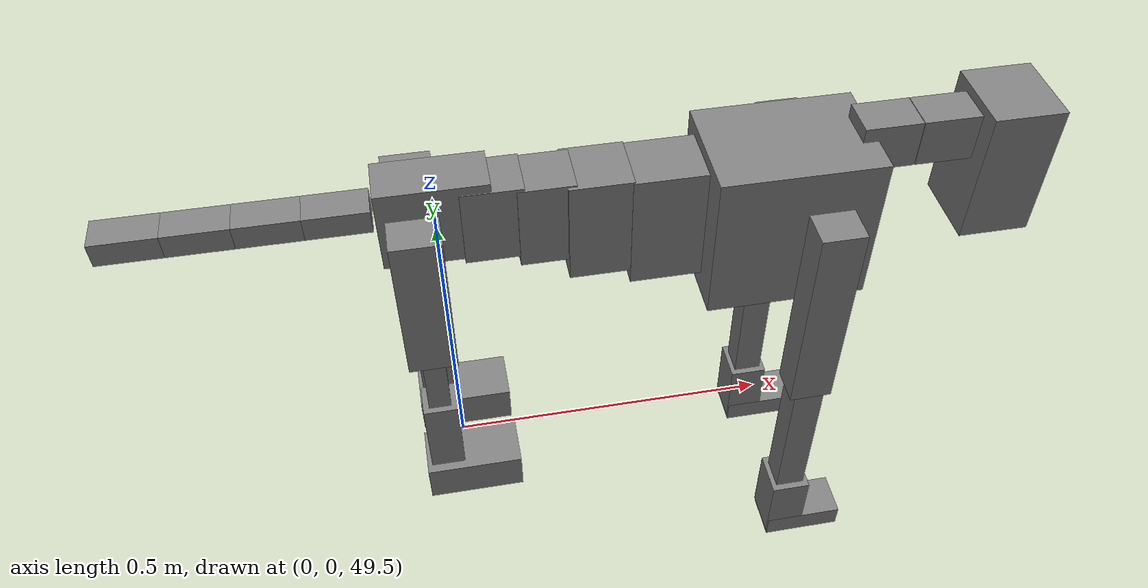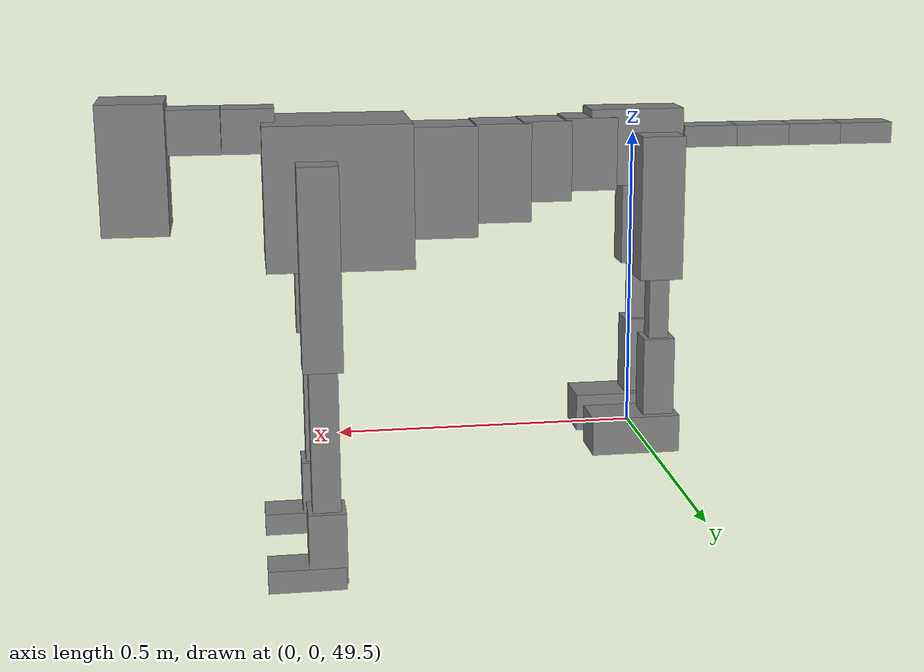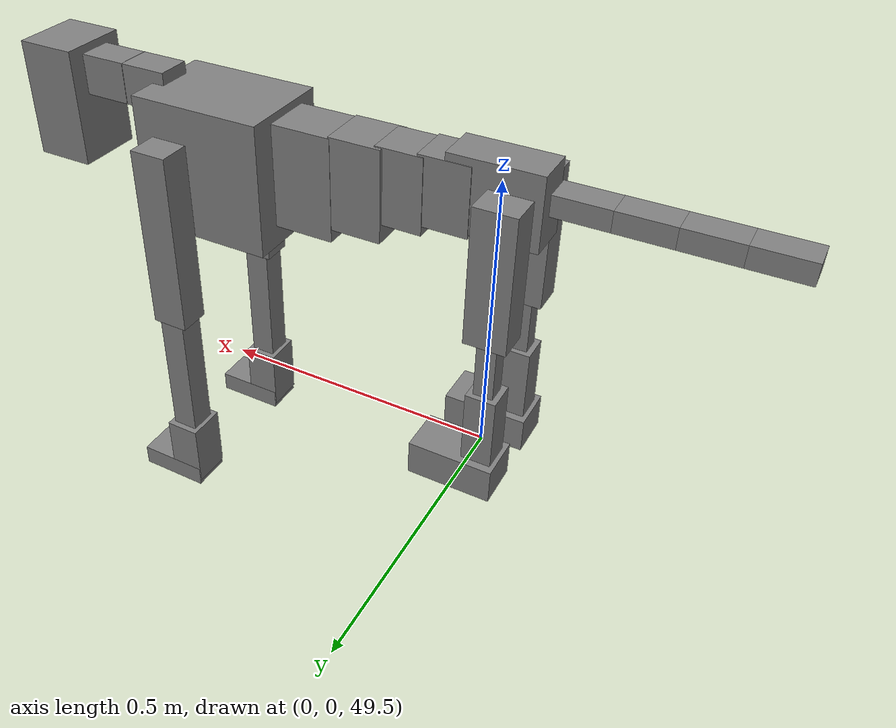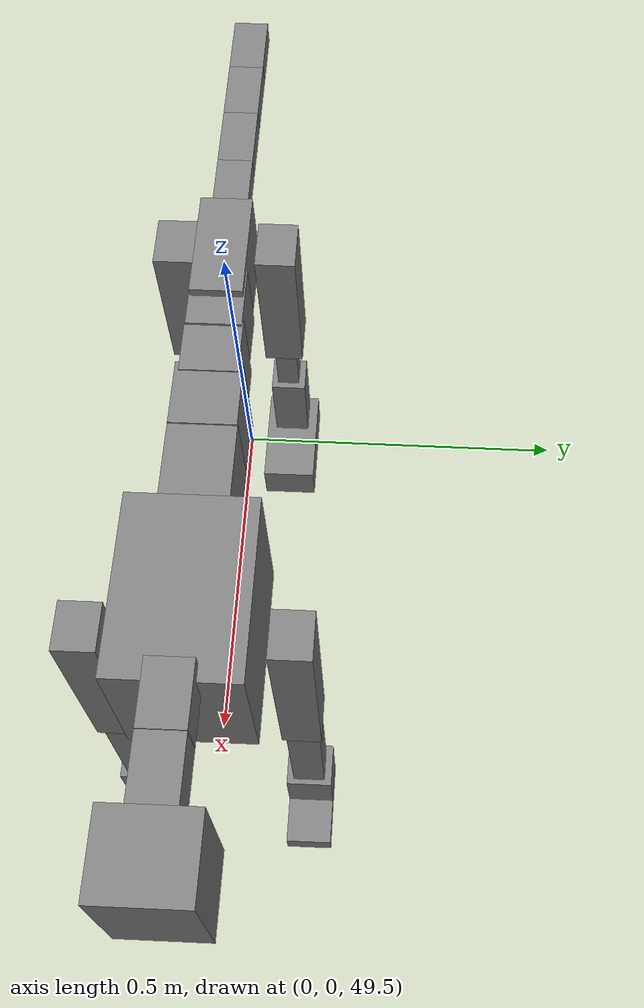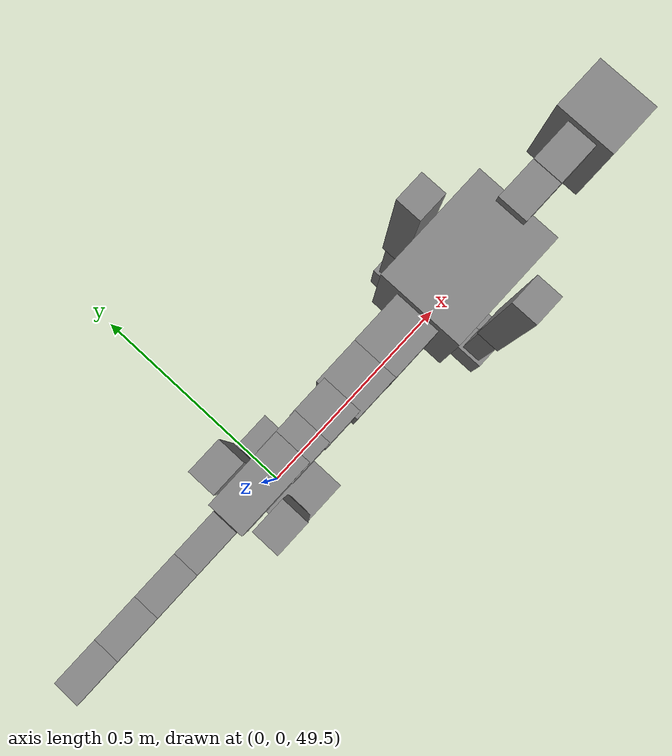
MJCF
<mujoco model="dog">

    <default>
        <joint armature="0.02" stiffness="1" damping="0.2" limited="true"/>
        <geom condim="3" friction="1 0.05 0.05" margin="0.01"/>
        <motor ctrllimited="true" ctrlrange="-1.0 1.0" forcelimited="true" gear="50"/>
    </default>

    <compiler inertiafromgeom="true" angle="radian"/>

    <option timestep="0.016" iterations="50" tolerance="1e-10" solver="Newton" jacobian="dense" cone="pyramidal"/>

    <size nconmax="20000" njmax="60000" nstack="5000000"/>
    <visual>
        <map force="0.1" zfar="30"/>
        <rgba haze="0.15 0.25 0.35 1"/>
        <quality shadowsize="2048"/>
        <global offwidth="800" offheight="800"/>
    </visual>

    <asset>
        <texture type="skybox" builtin="gradient" rgb1="0.3 0.5 0.7" rgb2="0 0 0" width="512" height="512"/>
        <texture name="texplane" type="2d" builtin="checker" rgb1=".2 .3 .4" rgb2=".1 0.15 0.2" width="512" height="512"
                 mark="cross" markrgb=".8 .8 .8"/>
        <texture name="texgeom" type="cube" builtin="flat" mark="cross" width="127" height="1278" rgb1="0.8 0.6 0.4"
                 rgb2="0.8 0.6 0.4" markrgb="1 1 1" random="0.01"/>

        <material name="matplane" reflectance="0.3" texture="texplane" texrepeat="1 1" texuniform="true"/>
        <material name="matgeom" texture="texgeom" texuniform="true" rgba="0.8 0.6 .4 1"/>
    </asset>

    <worldbody>
        <geom name="floor" pos="0 0 0" size="0 0 .25" type="plane" material="matplane" condim="3"/>

        <light directional="false" diffuse=".2 .2 .2" specular="0 0 0" pos="0 0 5" dir="0 0 -1" castshadow="false"/>
        <light mode="targetbodycom" target="torso" directional="false" diffuse=".8 .8 .8" specular="0.3 0.3 0.3"
               pos="0 0 4.0" dir="0 0 -1"/>

        <body name="root" pos="0 0 50">
            <freejoint name="root_1"/>
            <geom type="box" pos="0 0 -0.02" size="0.0774  0.0358  0.063" density="2030"/>

            <body name="spine1" pos="0.054 0 0">
                <joint name="spine1_y" axis="0 1 0" range="0 0.7" limited="true"/>
                <geom type="box" pos="0.02375 0 -0.03" size="0.04375  0.0375  0.05985" density="2030"/>

                <body name="spine2" pos="0.0612 0 0">
                    <joint name="spine2_y" axis="0 1 0" range="-0.15 0.15" limited="true"/>
                    <geom type="box" pos="0.03555  0  -0.04" size="0.04055  0.039  0.06615" density="2030"/>

                    <body name="spine3" pos="0.0730 0 0">
                        <joint name="spine3_y" axis="0 1 0" range="-0.15 0.15" limited="true"/>
                        <geom type="box" pos="0.03555  0  -0.057" size="0.04555  0.0445  0.081" density="2030"/>

                        <body name="spine4" pos="0.0780 0 0">
                            <joint name="spine4_y" axis="0 1 0" range="-0.15 0.15" limited="true"/>
                            <geom type="box" pos="0.05265  0  -0.07" size="0.05265  0.045  0.09135" density="2030"/>

                            <body name="torso" pos="0.1082 0 0">
                                <joint name="torso_y" axis="0 1 0" range="-0.15 0.15" limited="true"/>
                                <geom type="box" pos="0.11925  0  -0.085" size="0.11925  0.085  0.11745"
                                      density="2030"/>

                                <body name="neck1" pos="0.2160  0   0.0180">
                                    <joint name="neck1_y" axis="0 1 0" range="-1.2  -1" limited="true"/>
                                    <geom type="box" pos="0.0423  0  0" size="0.0423  0.03  0.036" density="2325"/>

                                    <body name="neck2" pos="0.0853  0  0">
                                        <joint name="neck2_y" axis="0 1 0" range="0.1  0" limited="true"/>
                                        <geom type="box" pos="0.0423  0  0" size="0.0423  0.03  0.036" density="2325"/>

                                        <body name="head" pos="0.0853  0  0">
                                            <joint name="head_y" axis="0 1 0" range="-0.3  -0.2" limited="true"/>
                                            <geom type="box" pos="0.0531  0  -0.055" size="0.0531  0.06  0.1044"
                                                  density="4030"/>

                                        </body>
                                    </body>
                                </body>

                                <body name="front_shoulder" pos="0.156  0   -0.0480">
                                    <joint name="front_shoulder_y" axis="0 1 0" range="-1 1.5" limited="true"/>
                                    <geom type="box" pos="0 0.13 -0.1376" size="0.0324  0.0277  0.1642" density="1158"/>
                                    <geom type="box" pos="0 -0.13 -0.1376" size="0.0324  0.0277  0.1642"
                                          density="1158"/>

                                    <body name="front_elbow" pos="0  0  -0.2752">
                                        <joint name="front_elbow_y" axis="0 1 0" range="-2 0" limited="true"/>
                                        <geom type="box" pos="0 0.13 -0.1372" size="0.0232  0.0238  0.1372"
                                              density="1081"/>
                                        <geom type="box" pos="0 -0.13 -0.1372" size="0.0232  0.0238  0.1372"
                                              density="1081"/>

                                        <body name="front_wrist" pos="0  0  -0.2743">
                                            <joint name="front_wrist_y" axis="0 1 0" range="-0.2 0" limited="true"/>
                                            <geom type="box" pos="0 0.13 -0.0471" size="0.0311  0.0346  0.0602"
                                                  density="1664"/>
                                            <geom type="box" pos="0 -0.13 -0.0471" size="0.0311  0.0346  0.0602"
                                                  density="1664"/>

                                            <body name="front_finger_end" pos="0  0  -0.0942">
                                                <joint name="front_finger_y" axis="0 1 0" range="-0.4 1"
                                                       limited="true"/>
                                                <geom type="box" pos="0.0347  0.13  -0.0041"
                                                      size="0.0635  0.0347  0.0191" density="1515"/>
                                                <geom type="box" pos="0.0347  -0.13  -0.0041"
                                                      size="0.0635  0.0347  0.0191" density="1515"/>

                                            </body>

                                        </body>
                                    </body>
                                </body>

                            </body>
                        </body>
                    </body>
                </body>
            </body>

            <body name="back_hip" pos="-0.03 0 -0.018">
                <joint name="back_hip_y" axis="0 1 0" range="-1.5 0.3" limited="true"/>
                <geom type="box" pos="0 0.07 -0.0954" size="0.0355  0.0279  0.1182" density="1154"/>
                <geom type="box" pos="0 -0.07 -0.0954" size="0.0355  0.0279  0.1182" density="1154"/>

                <body name="back_knee" pos="0  0  -0.1908">
                    <joint name="back_knee_y" axis="0 1 0" range="0 2.8" limited="true"/>
                    <geom type="box" pos="0 0.07 -0.0674" size="0.0166  0.0163  0.0830" density="1227"/>
                    <geom type="box" pos="0 -0.07 -0.0674" size="0.0166  0.0163  0.0830" density="1227"/>

                    <body name="back_ankle" pos="0  0  -0.1349">
                        <joint name="back_ankle_y" axis="0 1 0" range="-2.2 0" limited="true"/>
                        <geom type="box" pos="0 0.07 -0.0669" size="0.0260  0.0260  0.0781" density="1284"/>
                        <geom type="box" pos="0 -0.07 -0.0669" size="0.0260  0.0260  0.0781" density="1284"/>

                        <body name="back_toe_end" pos="0  0  -0.1337">
                            <joint name="back_toe_y" axis="0 1 0" range="-0.4 1" limited="true"/>
                            <geom type="box" pos="0.0402  0.07  -0.0164" size="0.0737  0.0402  0.0314" density="1515"/>
                            <geom type="box" pos="0.0402  -0.07  -0.0164" size="0.0737  0.0402  0.0314" density="1515"/>

                        </body>
                    </body>
                </body>
            </body>

            <body name="tail1" pos="-0.074 0 -0.006">
                <joint name="tail1_y" axis="0 1 0" range="-0.2 0.2" limited="true"/>
                <geom type="box" pos="-0.0536  0  0" size="0.045  0.025  0.0175" density="1587"/>

                <body name="tail2" pos="-0.09 0 0">
                    <joint name="tail2_y" axis="0 1 0" range="-0.2 0.2" limited="true"/>
                    <geom type="box" pos="-0.0536  0  0" size="0.045  0.025  0.0175" density="1587"/>

                    <body name="tail3" pos="-0.09 0 0">
                        <joint name="tail3_y" axis="0 1 0" range="-0.2 0.2" limited="true"/>
                        <geom type="box" pos="-0.0536  0  0" size="0.045  0.025  0.0175" density="1587"/>

                        <body name="tail4" pos="-0.09 0 0">
                            <joint name="tail4_y" axis="0 1 0" range="-0.2 0.2" limited="true"/>
                            <geom type="box" pos="-0.0536  0  0" size="0.045  0.025  0.0175" density="1587"/>

                        </body>
                    </body>
                </body>
            </body>
        </body>
    </worldbody>

    <actuator>
        <motor joint="spine1_y" forcerange="-150 150     "/>
        <motor joint="spine2_y" forcerange="-150 150     "/>
        <motor joint="spine3_y" forcerange="-150 150     "/>
        <motor joint="spine4_y" forcerange="-150 150     "/>
        <motor joint="torso_y" forcerange="-150 150     "/>
        <motor joint="neck1_y" forcerange="-100 100       "/>
        <motor joint="neck2_y" forcerange="-100 100       "/>
        <motor joint="head_y" forcerange="-150 150       "/>
        <motor joint="front_shoulder_y" forcerange="-107.39 177.21"/>
        <motor joint="front_elbow_y" forcerange="-106.47 166.32"/>
        <motor joint="front_wrist_y" forcerange="-148.28 128.31"/>
        <motor joint="front_finger_y" forcerange="-78.04 66.78"/>
        <motor joint="back_hip_y" forcerange="-200.46 371.30"/>
        <motor joint="back_knee_y" forcerange="-217.96 219.48"/>
        <motor joint="back_angle_y" forcerange="-86.85 228.58"/>
        <motor joint="back_toe_y" forcerange="-134.34 107.43"/>
        <motor joint="tail1_y" forcerange="-50 50     "/>
        <motor joint="tail2_y" forcerange="-50 50     "/>
        <motor joint="tail3_y" forcerange="-50 50     "/>
        <motor joint="tail4_y" forcerange="-50 50     "/>
    </actuator>
</mujoco>
